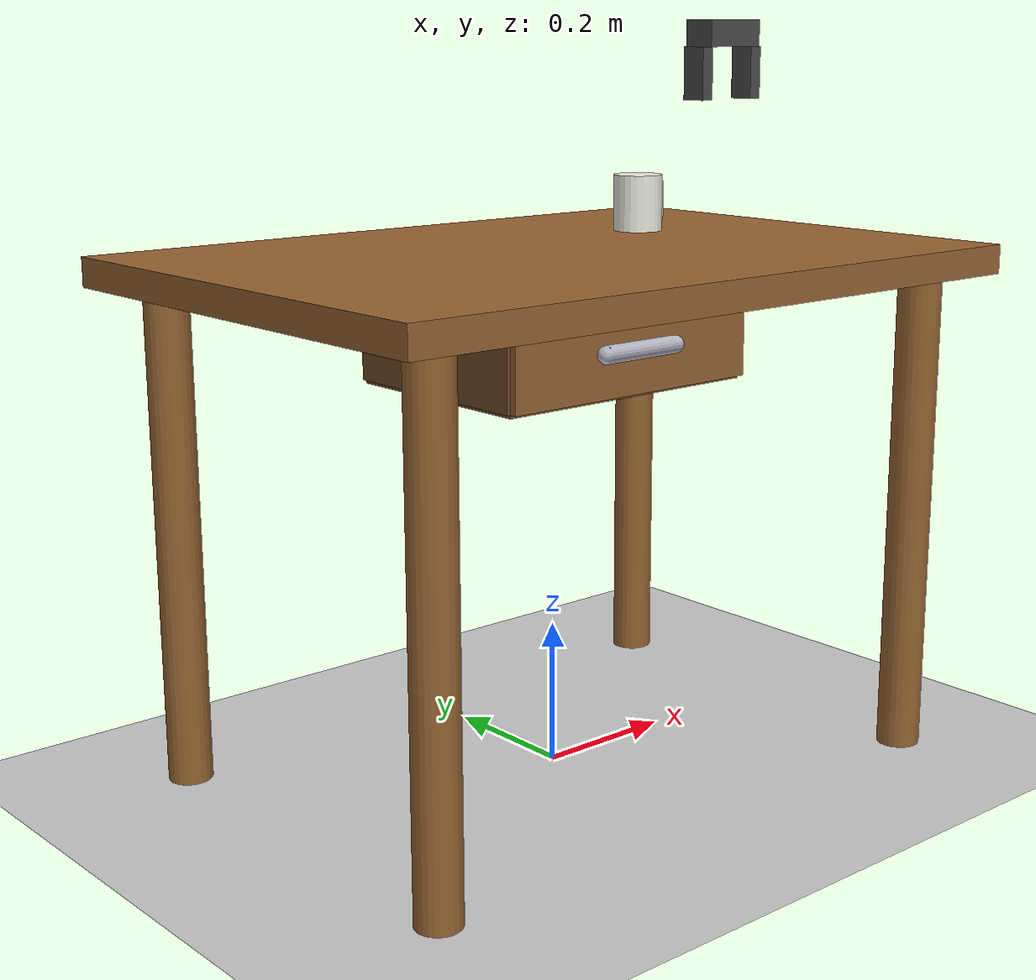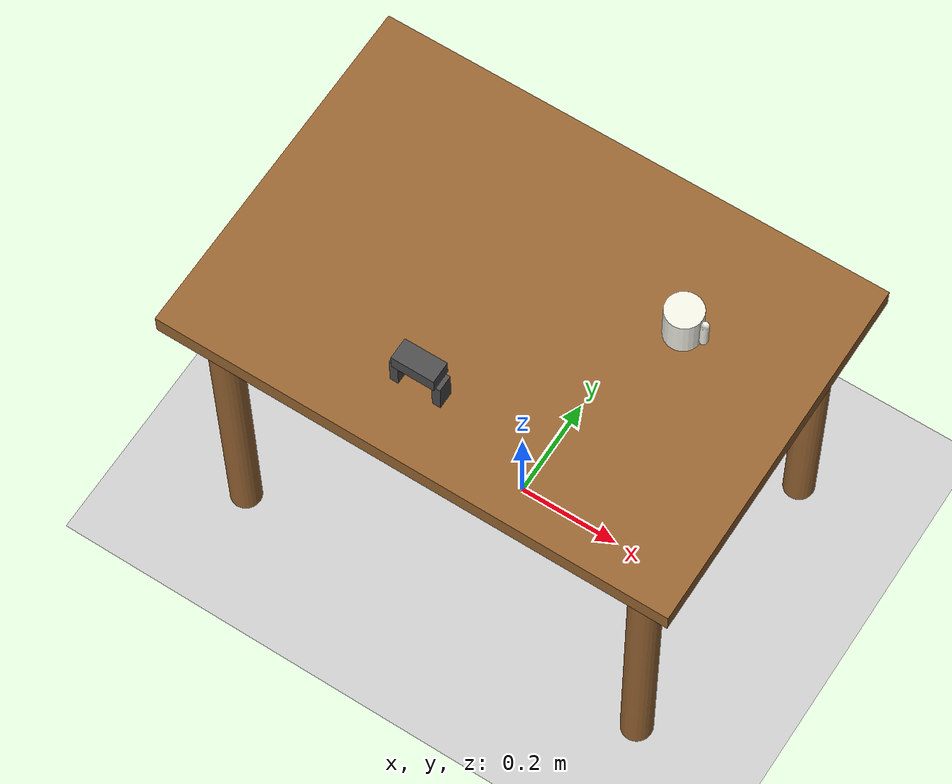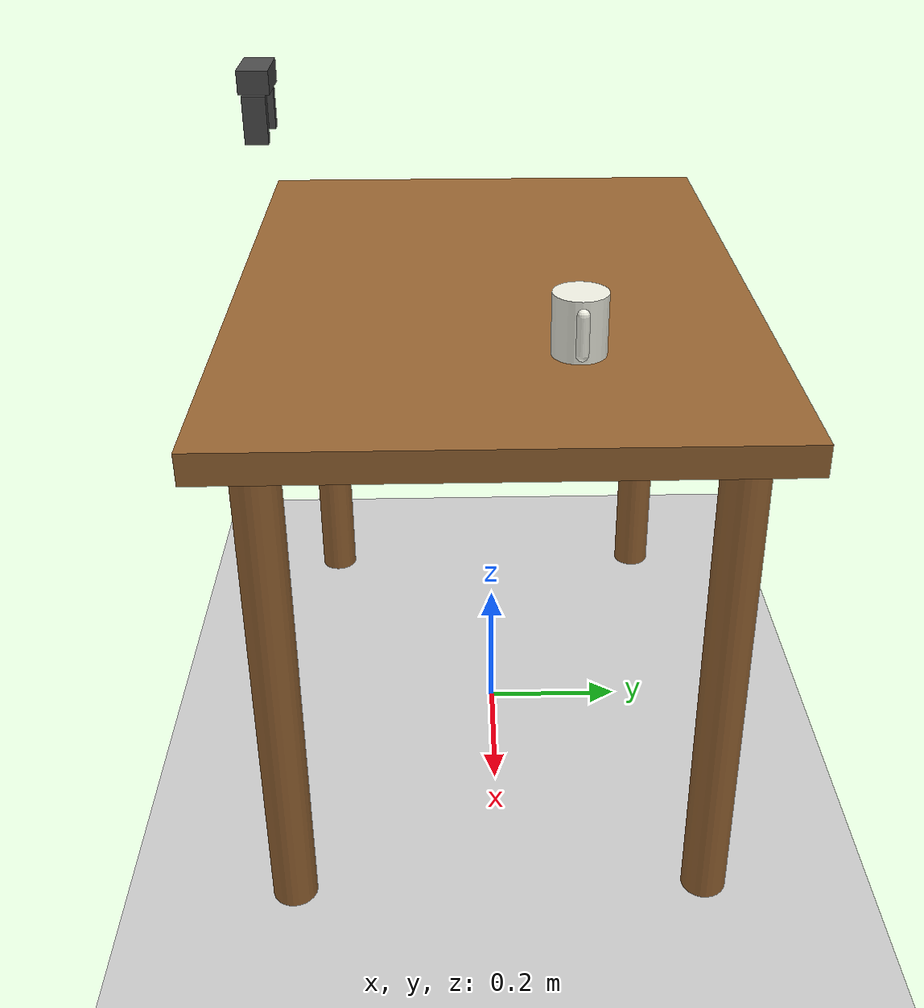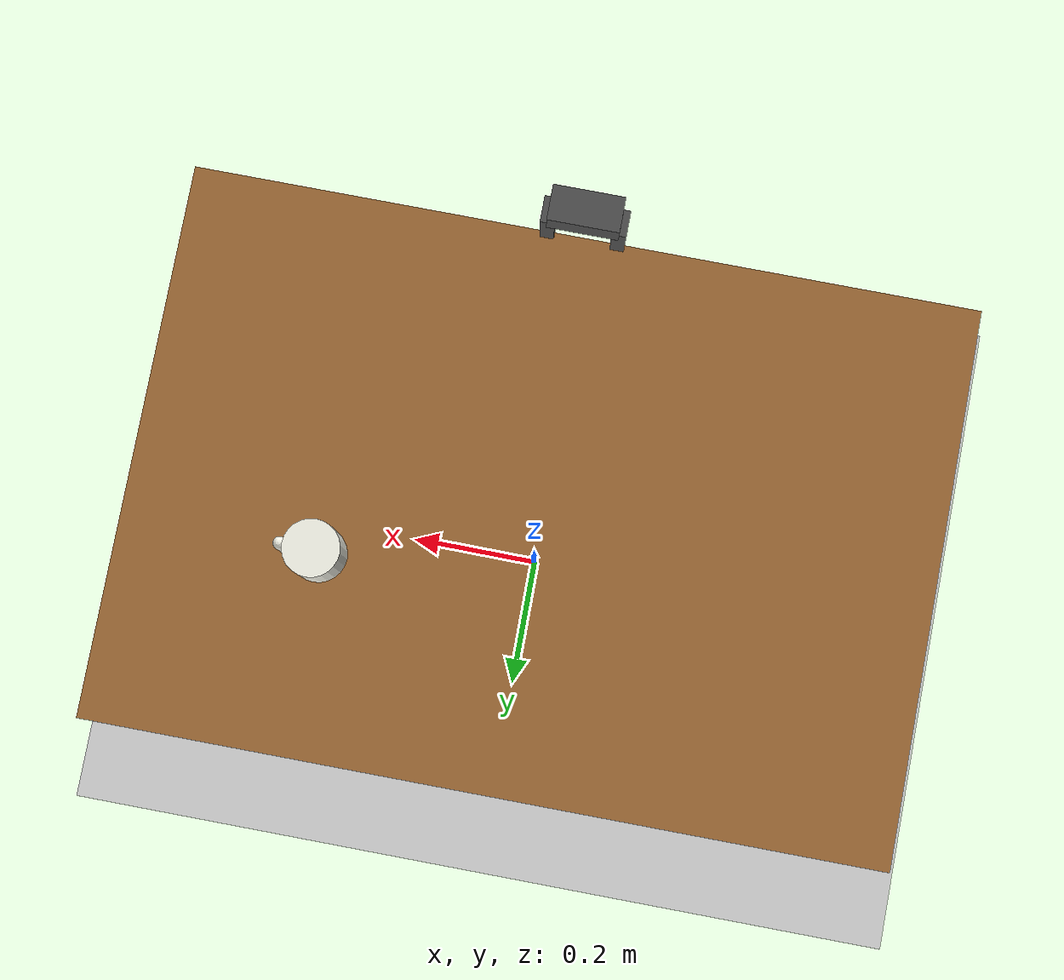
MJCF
<mujoco model="tabletop-v1">
  <compiler angle="radian" autolimits="true"/>

  <option gravity="0 0 -9.81" timestep="0.002"/>

  <default>
    <geom condim="4" friction="0.8 0.02 0.01"/>
    <joint damping="0.5"/>
  </default>

  <asset>
    <texture name="grid" type="2d" builtin="checker" rgb1="0.9 0.9 0.9" rgb2="0.7 0.7 0.7" width="64" height="64"/>
    <material name="floor_mat" texture="grid" texrepeat="8 8"/>
    <material name="wood" rgba="0.6 0.4 0.2 1"/>
    <material name="wood_dark" rgba="0.45 0.3 0.15 1"/>
    <material name="ceramic" rgba="0.95 0.95 0.9 1" specular="0.5" shininess="0.5"/>
    <material name="metal" rgba="0.7 0.7 0.75 1" specular="0.8" shininess="0.8"/>
    <material name="gripper_mat" rgba="0.3 0.3 0.3 1" specular="0.5"/>
  </asset>

  <worldbody>
    <!-- Scene lighting -->
    <light name="top" pos="0 0 2.5" dir="0 0 -1" diffuse="0.8 0.8 0.8" specular="0.3 0.3 0.3"/>
    <light name="front_light" pos="0 -2 1.5" dir="0 1 -0.5" diffuse="0.4 0.4 0.4"/>

    <!-- Floor -->
    <geom name="floor" type="plane" size="2 2 0.01" material="floor_mat"/>

    <!-- Overhead camera (looks down at the table) -->
    <camera name="overhead" pos="0 -0.1 1.8" xyaxes="1 0 0 0 1 0"/>

    <!-- Front camera -->
    <camera name="front" pos="0 -1.2 0.9" xyaxes="1 0 0 0 0.3 1"/>

    <!-- Side camera -->
    <camera name="side" pos="1.2 0 0.9" xyaxes="0 1 0 0 0.3 1"/>

    <!-- ============ TABLE ============ -->
    <body name="table" pos="0 0 0.35">
      <geom name="tabletop" type="box" size="0.5 0.35 0.02" pos="0 0 0.35" material="wood"/>
      <geom name="leg_fl" type="cylinder" size="0.03 0.35" pos="-0.42 -0.28 0" material="wood"/>
      <geom name="leg_fr" type="cylinder" size="0.03 0.35" pos="0.42 -0.28 0" material="wood"/>
      <geom name="leg_bl" type="cylinder" size="0.03 0.35" pos="-0.42 0.28 0" material="wood"/>
      <geom name="leg_br" type="cylinder" size="0.03 0.35" pos="0.42 0.28 0" material="wood"/>

      <!-- Drawer housing (fixed to table, under the tabletop) -->
      <geom name="drawer_housing_bottom" type="box" size="0.2 0.15 0.005" pos="0 0 0.2" material="wood_dark"/>
      <geom name="drawer_housing_left" type="box" size="0.005 0.15 0.06" pos="-0.2 0 0.26" material="wood_dark"/>
      <geom name="drawer_housing_right" type="box" size="0.005 0.15 0.06" pos="0.2 0 0.26" material="wood_dark"/>
      <geom name="drawer_housing_back" type="box" size="0.2 0.005 0.06" pos="0 0.15 0.26" material="wood_dark"/>

      <!-- Drawer (slides along Y axis, i.e., pulls toward you) -->
      <body name="drawer" pos="0 0 0.26">
        <joint name="drawer_slide" type="slide" axis="0 -1 0" range="0 0.25" damping="2.0"/>
        <geom name="drawer_bottom" type="box" size="0.19 0.14 0.004" pos="0 0 -0.055" material="wood" mass="0.5"/>
        <geom name="drawer_front" type="box" size="0.2 0.01 0.06" pos="0 -0.15 0" material="wood" mass="0.3"/>
        <geom name="drawer_left" type="box" size="0.005 0.14 0.05" pos="-0.185 0 0" material="wood" mass="0.1"/>
        <geom name="drawer_right" type="box" size="0.005 0.14 0.05" pos="0.185 0 0" material="wood" mass="0.1"/>
        <!-- Drawer handle -->
        <geom name="drawer_handle" type="capsule" size="0.012 0.06" pos="0 -0.17 0" euler="0 1.5708 0" material="metal" mass="0.05"/>
      </body>

    </body>

    <!-- Mug on the tabletop (freejoint requires top-level body) -->
    <body name="mug" pos="0.25 0.1 0.75">
      <freejoint name="mug_joint"/>
      <geom name="mug_body" type="cylinder" size="0.035 0.05" material="ceramic" mass="0.25"/>
      <geom name="mug_handle" type="capsule" size="0.008 0.025" pos="0.04 0 0.01" euler="0 0 0" material="ceramic" mass="0.02"/>
    </body>

    <!-- ============ FLOATING GRIPPER ============ -->
    <!-- A simple parallel-jaw gripper that can move freely in 3D -->
    <body name="gripper_base" pos="0 -0.3 1.0">
      <!-- 6-DOF movement: 3 translation + 3 rotation -->
      <joint name="gripper_x" type="slide" axis="1 0 0" range="-0.8 0.8" damping="50"/>
      <joint name="gripper_y" type="slide" axis="0 1 0" range="-0.8 0.8" damping="50"/>
      <joint name="gripper_z" type="slide" axis="0 0 1" range="-0.4 0.5" damping="50"/>
      <joint name="gripper_yaw" type="hinge" axis="0 0 1" range="-3.14 3.14" damping="20"/>

      <!-- Gripper palm -->
      <geom name="gripper_palm" type="box" size="0.04 0.02 0.015" material="gripper_mat" mass="0.5"/>

      <!-- Wrist camera (attached to gripper) -->
      <camera name="wrist" pos="0 -0.05 0.08" xyaxes="1 0 0 0 0.1 1" fovy="60"/>

      <!-- Left finger -->
      <body name="finger_left" pos="-0.04 0 -0.015">
        <joint name="finger_left_slide" type="slide" axis="1 0 0" range="-0.005 0.04" damping="10"/>
        <geom name="finger_left_geom" type="box" size="0.008 0.015 0.03" pos="0 0 -0.03" material="gripper_mat" mass="0.05" friction="1.5 0.01 0.005"/>
      </body>

      <!-- Right finger -->
      <body name="finger_right" pos="0.04 0 -0.015">
        <joint name="finger_right_slide" type="slide" axis="-1 0 0" range="-0.005 0.04" damping="10"/>
        <geom name="finger_right_geom" type="box" size="0.008 0.015 0.03" pos="0 0 -0.03" material="gripper_mat" mass="0.05" friction="1.5 0.01 0.005"/>
      </body>
    </body>
  </worldbody>

  <!-- Actuators: how the agent controls the gripper -->
  <actuator>
    <!-- Gripper position control (velocity-servo for smooth movement) -->
    <velocity name="act_x" joint="gripper_x" kv="200" ctrlrange="-0.5 0.5"/>
    <velocity name="act_y" joint="gripper_y" kv="200" ctrlrange="-0.5 0.5"/>
    <velocity name="act_z" joint="gripper_z" kv="200" ctrlrange="-0.5 0.5"/>
    <velocity name="act_yaw" joint="gripper_yaw" kv="50" ctrlrange="-2.0 2.0"/>

    <!-- Finger control (position-servo so they hold grip) -->
    <position name="act_finger_left" joint="finger_left_slide" kp="400" ctrlrange="-0.005 0.04"/>
    <position name="act_finger_right" joint="finger_right_slide" kp="400" ctrlrange="-0.005 0.04"/>
  </actuator>

  <!-- Sensors for observation -->
  <sensor>
    <jointpos name="sens_drawer" joint="drawer_slide"/>
    <jointpos name="sens_finger_left" joint="finger_left_slide"/>
    <jointpos name="sens_finger_right" joint="finger_right_slide"/>
    <framepos name="sens_gripper_pos" objtype="body" objname="gripper_base"/>
    <framequat name="sens_gripper_quat" objtype="body" objname="gripper_base"/>
  </sensor>
</mujoco>
